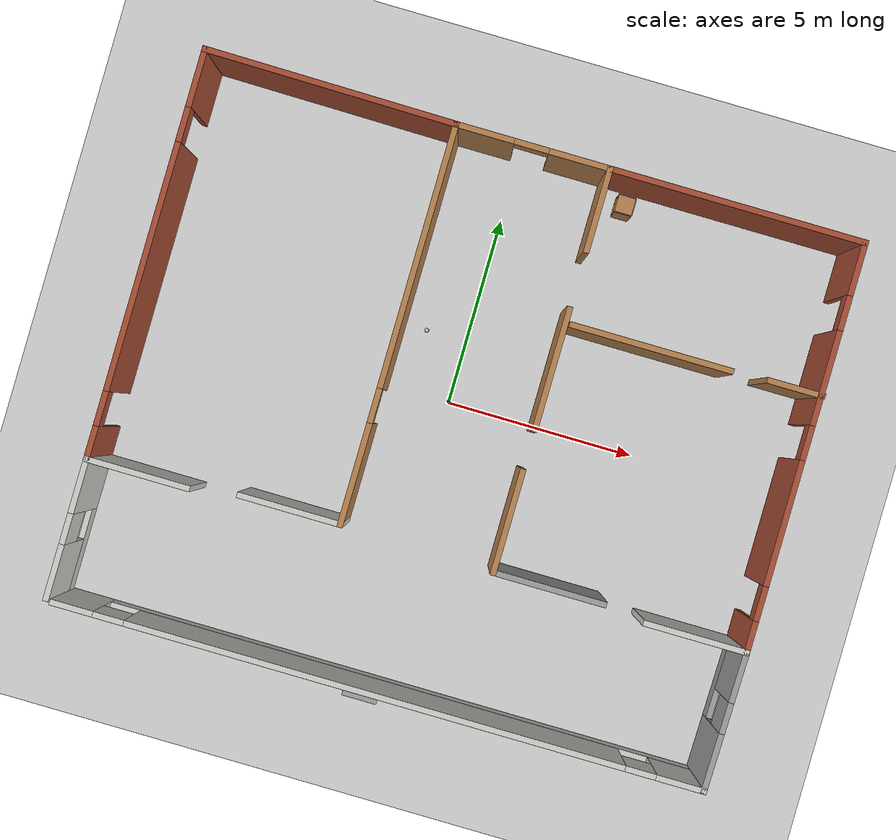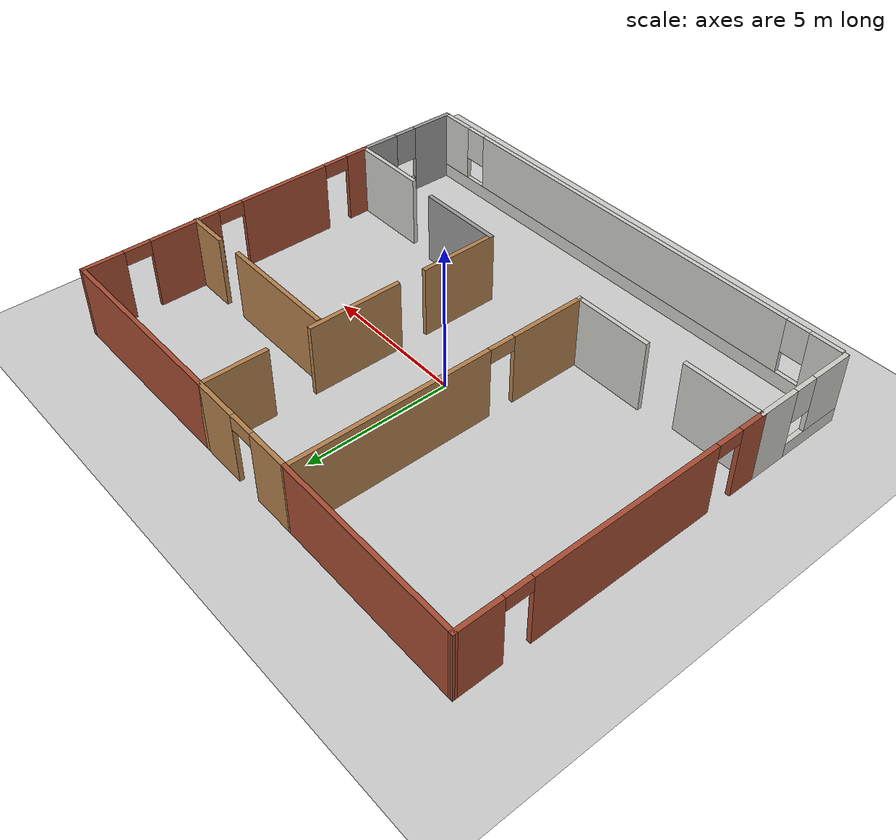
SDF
<sdf version="1.7">
 <world name="default">
  <light name="sun" type="directional">
   <pose>0 0 10 0 -0 0</pose>
   <diffuse>0.8 0.8 0.8 1</diffuse>
   <specular>0.2 0.2 0.2 1</specular>
   <attenuation>
    <range>1000</range>
    <constant>0.9</constant>
    <linear>0.01</linear>
    <quadratic>0.001</quadratic>
   </attenuation>
   <direction>-0.5 0.1 -0.9</direction>
   <spot><inner_angle>0</inner_angle><outer_angle>0</outer_angle><falloff>0</falloff></spot>
  </light>
  <model name="ground_plane">
   <static>1</static>
   <link name="link">
    <collision name="collision">
     <geometry><plane><normal>0 0 1</normal><size>100 100</size></plane></geometry>
     <surface><friction><ode><mu>100</mu><mu2>50</mu2></ode></friction></surface>
    </collision>
    <visual name="visual">
     <cast_shadows>0</cast_shadows>
     <geometry><plane><normal>0 0 1</normal><size>100 100</size></plane></geometry>
     <material>
      <script><uri>file://media/materials/scripts/gazebo.material</uri><name>Gazebo/Grey</name></script>
     </material>
    </visual>
   </link>
  </model>
  <gravity>0 0 -9.8</gravity>
  <magnetic_field>6e-06 2.3e-05 -4.2e-05</magnetic_field>
  <atmosphere type="adiabatic"/>
  <physics type="ode">
   <max_step_size>0.001</max_step_size>
   <real_time_factor>1</real_time_factor>
   <real_time_update_rate>1000</real_time_update_rate>
  </physics>
  <scene><ambient>0.4 0.4 0.4 1</ambient><background>0.7 0.7 0.7 1</background><shadows>1</shadows></scene>
  <audio><device>default</device></audio>
  <spherical_coordinates>
   <surface_model>EARTH_WGS84</surface_model>
   <latitude_deg>0</latitude_deg>
   <longitude_deg>0</longitude_deg>
   <elevation>0</elevation>
   <heading_deg>0</heading_deg>
  </spherical_coordinates>
  <model name="my_plan">
   <pose>0.324414 -0.387939 0 0 -0 0</pose>
   <link name="Door_9">
    <collision name="Door_9_Collision">
     <geometry><box><size>0.9 0.17 2</size></box></geometry>
     <pose>0 0 1 0 -0 0</pose>
    </collision>
    <visual name="Door_9_Visual">
     <pose>0 0 1 0 -0 0</pose>
     <geometry><box><size>0.9 0.17 2</size></box></geometry>
     <material>
      <script><uri>file://media/materials/scripts/gazebo.material</uri><name>Gazebo/Grey</name></script>
     </material>
    </visual>
    <pose>-0.408807 -7.33937 0 0 -0 0</pose>
   </link>
   <link name="Wall_0">
    <pose>-8.5662 1.83026 0 0 -0 -1.5708</pose>
    <visual name="Wall_0_Visual_0">
     <pose>-4.58913 0 1.25 0 -0 0</pose>
     <geometry><box><size>1.57174 0.15 2.5</size></box></geometry>
     <material>
      <script><uri>file://media/materials/scripts/gazebo.material</uri><name>Gazebo/Bricks</name></script>
      <ambient>1 1 1 1</ambient>
     </material>
     <meta><layer>0</layer></meta>
    </visual>
    <collision name="Wall_0_Collision_0">
     <geometry><box><size>1.57174 0.15 2.5</size></box></geometry>
     <pose>-4.58913 0 1.25 0 -0 0</pose>
    </collision>
    <visual name="Wall_0_Visual_1">
     <pose>0.319658 0 1.25 0 -0 0</pose>
     <geometry><box><size>6.44583 0.15 2.5</size></box></geometry>
     <material>
      <script><uri>file://media/materials/scripts/gazebo.material</uri><name>Gazebo/Bricks</name></script>
      <ambient>1 1 1 1</ambient>
     </material>
     <meta><layer>0</layer></meta>
    </visual>
    <collision name="Wall_0_Collision_1">
     <geometry><box><size>6.44583 0.15 2.5</size></box></geometry>
     <pose>0.319658 0 1.25 0 -0 0</pose>
    </collision>
    <visual name="Wall_0_Visual_2">
     <pose>4.90878 0 1.25 0 -0 0</pose>
     <geometry><box><size>0.932429 0.15 2.5</size></box></geometry>
     <material>
      <script><uri>file://media/materials/scripts/gazebo.material</uri><name>Gazebo/Bricks</name></script>
      <ambient>1 1 1 1</ambient>
     </material>
     <meta><layer>0</layer></meta>
    </visual>
    <collision name="Wall_0_Collision_2">
     <geometry><box><size>0.932429 0.15 2.5</size></box></geometry>
     <pose>4.90878 0 1.25 0 -0 0</pose>
    </collision>
    <visual name="Wall_0_Visual_3">
     <pose>-3.35325 0 2.25 0 -0 0</pose>
     <geometry><box><size>0.9 0.15 0.5</size></box></geometry>
     <material>
      <script><uri>file://media/materials/scripts/gazebo.material</uri><name>Gazebo/Bricks</name></script>
      <ambient>1 1 1 1</ambient>
     </material>
     <meta><layer>0</layer></meta>
    </visual>
    <collision name="Wall_0_Collision_3">
     <geometry><box><size>0.9 0.15 0.5</size></box></geometry>
     <pose>-3.35325 0 2.25 0 -0 0</pose>
    </collision>
    <visual name="Wall_0_Visual_4">
     <pose>3.99257 0 2.25 0 -0 0</pose>
     <geometry><box><size>0.9 0.15 0.5</size></box></geometry>
     <material>
      <script><uri>file://media/materials/scripts/gazebo.material</uri><name>Gazebo/Bricks</name></script>
      <ambient>1 1 1 1</ambient>
     </material>
     <meta><layer>0</layer></meta>
    </visual>
    <collision name="Wall_0_Collision_4">
     <geometry><box><size>0.9 0.15 0.5</size></box></geometry>
     <pose>3.99257 0 2.25 0 -0 0</pose>
    </collision>
   </link>
   <link name="Wall_1">
    <collision name="Wall_1_Collision">
     <geometry><box><size>2.75 0.15 2.5</size></box></geometry>
     <pose>0 0 1.25 0 -0 0</pose>
    </collision>
    <visual name="Wall_1_Visual">
     <pose>0 0 1.25 0 -0 0</pose>
     <geometry><box><size>2.75 0.15 2.5</size></box></geometry>
     <material>
      <script><uri>file://media/materials/scripts/gazebo.material</uri><name>Gazebo/CeilingTiled</name></script>
      <ambient>1 1 1 1</ambient>
     </material>
     <meta><layer>0</layer></meta>
    </visual>
    <pose>-7.2662 -3.46974 0 0 -0 0</pose>
   </link>
   <link name="Wall_10">
    <collision name="Wall_10_Collision">
     <geometry><box><size>2.75 0.15 2.5</size></box></geometry>
     <pose>0 0 1.25 0 -0 0</pose>
    </collision>
    <visual name="Wall_10_Visual">
     <pose>0 0 1.25 0 -0 0</pose>
     <geometry><box><size>2.75 0.15 2.5</size></box></geometry>
     <material>
      <script><uri>file://media/materials/scripts/gazebo.material</uri><name>Gazebo/Wood</name></script>
      <ambient>1 1 1 1</ambient>
     </material>
     <meta><layer>0</layer></meta>
    </visual>
    <pose>1.93486 -2.06311 0 0 -0 -1.5708</pose>
   </link>
   <link name="Wall_11">
    <collision name="Wall_11_Collision">
     <geometry><box><size>3 0.15 2.5</size></box></geometry>
     <pose>0 0 1.25 0 -0 0</pose>
    </collision>
    <visual name="Wall_11_Visual">
     <pose>0 0 1.25 0 -0 0</pose>
     <geometry><box><size>3 0.15 2.5</size></box></geometry>
     <material>
      <script><uri>file://media/materials/scripts/gazebo.material</uri><name>Gazebo/Grey</name></script>
      <ambient>1 1 1 1</ambient>
     </material>
     <meta><layer>0</layer></meta>
    </visual>
    <pose>3.35986 -3.36311 0 0 -0 0</pose>
   </link>
   <link name="Wall_13">
    <collision name="Wall_13_Collision">
     <geometry><box><size>4.25 0.15 2.5</size></box></geometry>
     <pose>0 0 1.25 0 -0 0</pose>
    </collision>
    <visual name="Wall_13_Visual">
     <pose>0 0 1.25 0 -0 0</pose>
     <geometry><box><size>4.25 0.15 2.5</size></box></geometry>
     <material>
      <script><uri>file://media/materials/scripts/gazebo.material</uri><name>Gazebo/Wood</name></script>
      <ambient>1 1 1 1</ambient>
     </material>
     <meta><layer>0</layer></meta>
    </visual>
    <pose>4.15976 3.0847 0 0 -0 0</pose>
   </link>
   <link name="Wall_15">
    <collision name="Wall_15_Collision">
     <geometry><box><size>3.25 0.15 2.5</size></box></geometry>
     <pose>0 0 1.25 0 -0 0</pose>
    </collision>
    <visual name="Wall_15_Visual">
     <pose>0 0 1.25 0 -0 0</pose>
     <geometry><box><size>3.25 0.15 2.5</size></box></geometry>
     <material>
      <script><uri>file://media/materials/scripts/gazebo.material</uri><name>Gazebo/Wood</name></script>
      <ambient>1 1 1 1</ambient>
     </material>
     <meta><layer>0</layer></meta>
    </visual>
    <pose>1.93486 1.88451 0 0 -0 -1.5708</pose>
   </link>
   <link name="Wall_17">
    <collision name="Wall_17_Collision">
     <geometry><box><size>1.5 0.15 2.5</size></box></geometry>
     <pose>0 0 1.25 0 -0 0</pose>
    </collision>
    <visual name="Wall_17_Visual">
     <pose>0 0 1.25 0 -0 0</pose>
     <geometry><box><size>1.5 0.15 2.5</size></box></geometry>
     <material>
      <script><uri>file://media/materials/scripts/gazebo.material</uri><name>Gazebo/Wood</name></script>
      <ambient>1 1 1 1</ambient>
     </material>
     <meta><layer>0</layer></meta>
    </visual>
    <pose>7.89186 3.11968 0 0 -0 0</pose>
   </link>
   <link name="Wall_19">
    <pose>0.040725 -7.12949 0 0 -0 0</pose>
    <visual name="Wall_19_Visual_0">
     <pose>-7.94541 0 1.25 0 -0 0</pose>
     <geometry><box><size>1.10919 0.15 2.5</size></box></geometry>
     <material>
      <script><uri>file://media/materials/scripts/gazebo.material</uri><name>Gazebo/CeilingTiled</name></script>
      <ambient>1 1 1 1</ambient>
     </material>
     <meta><layer>0</layer></meta>
    </visual>
    <collision name="Wall_19_Collision_0">
     <geometry><box><size>1.10919 0.15 2.5</size></box></geometry>
     <pose>-7.94541 0 1.25 0 -0 0</pose>
    </collision>
    <visual name="Wall_19_Visual_1">
     <pose>0.554593 0 0.25 0 -0 0</pose>
     <geometry><box><size>15.8908 0.15 0.5</size></box></geometry>
     <material>
      <script><uri>file://media/materials/scripts/gazebo.material</uri><name>Gazebo/CeilingTiled</name></script>
      <ambient>1 1 1 1</ambient>
     </material>
     <meta><layer>0</layer></meta>
    </visual>
    <collision name="Wall_19_Collision_1">
     <geometry><box><size>15.8908 0.15 0.5</size></box></geometry>
     <pose>0.554593 0 0.25 0 -0 0</pose>
    </collision>
    <visual name="Wall_19_Visual_2">
     <pose>-0.09973 0 1.5 0 -0 0</pose>
     <geometry><box><size>12.9822 0.15 2</size></box></geometry>
     <material>
      <script><uri>file://media/materials/scripts/gazebo.material</uri><name>Gazebo/CeilingTiled</name></script>
      <ambient>1 1 1 1</ambient>
     </material>
     <meta><layer>0</layer></meta>
    </visual>
    <collision name="Wall_19_Collision_2">
     <geometry><box><size>12.9822 0.15 2</size></box></geometry>
     <pose>-0.09973 0 1.5 0 -0 0</pose>
    </collision>
    <visual name="Wall_19_Visual_3">
     <pose>7.84568 0 1.5 0 -0 0</pose>
     <geometry><box><size>1.30865 0.15 2</size></box></geometry>
     <material>
      <script><uri>file://media/materials/scripts/gazebo.material</uri><name>Gazebo/CeilingTiled</name></script>
      <ambient>1 1 1 1</ambient>
     </material>
     <meta><layer>0</layer></meta>
    </visual>
    <collision name="Wall_19_Collision_3">
     <geometry><box><size>1.30865 0.15 2</size></box></geometry>
     <pose>7.84568 0 1.5 0 -0 0</pose>
    </collision>
    <visual name="Wall_19_Visual_4">
     <pose>-6.99081 0 1.9 0 -0 0</pose>
     <geometry><box><size>0.8 0.15 1.2</size></box></geometry>
     <material>
      <script><uri>file://media/materials/scripts/gazebo.material</uri><name>Gazebo/CeilingTiled</name></script>
      <ambient>1 1 1 1</ambient>
     </material>
     <meta><layer>0</layer></meta>
    </visual>
    <collision name="Wall_19_Collision_4">
     <geometry><box><size>0.8 0.15 1.2</size></box></geometry>
     <pose>-6.99081 0 1.9 0 -0 0</pose>
    </collision>
    <visual name="Wall_19_Visual_5">
     <pose>6.79135 0 1.9 0 -0 0</pose>
     <geometry><box><size>0.8 0.15 1.2</size></box></geometry>
     <material>
      <script><uri>file://media/materials/scripts/gazebo.material</uri><name>Gazebo/CeilingTiled</name></script>
      <ambient>1 1 1 1</ambient>
     </material>
     <meta><layer>0</layer></meta>
    </visual>
    <collision name="Wall_19_Collision_5">
     <geometry><box><size>0.8 0.15 1.2</size></box></geometry>
     <pose>6.79135 0 1.9 0 -0 0</pose>
    </collision>
   </link>
   <link name="Wall_20">
    <pose>8.50029 -5.32853 0 0 -0 1.5516</pose>
    <visual name="Wall_20_Visual_0">
     <pose>-1.0934 0 1.25 0 -0 0</pose>
     <geometry><box><size>1.56579 0.15 2.5</size></box></geometry>
     <material>
      <script><uri>file://media/materials/scripts/gazebo.material</uri><name>Gazebo/Grey</name></script>
      <ambient>1 1 1 1</ambient>
     </material>
     <meta><layer>0</layer></meta>
    </visual>
    <collision name="Wall_20_Collision_0">
     <geometry><box><size>1.56579 0.15 2.5</size></box></geometry>
     <pose>-1.0934 0 1.25 0 -0 0</pose>
    </collision>
    <visual name="Wall_20_Visual_1">
     <pose>0.782897 0 0.25 0 -0 0</pose>
     <geometry><box><size>2.1868 0.15 0.5</size></box></geometry>
     <material>
      <script><uri>file://media/materials/scripts/gazebo.material</uri><name>Gazebo/Grey</name></script>
      <ambient>1 1 1 1</ambient>
     </material>
     <meta><layer>0</layer></meta>
    </visual>
    <collision name="Wall_20_Collision_1">
     <geometry><box><size>2.1868 0.15 0.5</size></box></geometry>
     <pose>0.782897 0 0.25 0 -0 0</pose>
    </collision>
    <visual name="Wall_20_Visual_2">
     <pose>1.1829 0 1.5 0 -0 0</pose>
     <geometry><box><size>1.3868 0.15 2</size></box></geometry>
     <material>
      <script><uri>file://media/materials/scripts/gazebo.material</uri><name>Gazebo/Grey</name></script>
      <ambient>1 1 1 1</ambient>
     </material>
     <meta><layer>0</layer></meta>
    </visual>
    <collision name="Wall_20_Collision_2">
     <geometry><box><size>1.3868 0.15 2</size></box></geometry>
     <pose>1.1829 0 1.5 0 -0 0</pose>
    </collision>
    <visual name="Wall_20_Visual_3">
     <pose>0.089496 0 1.9 0 -0 0</pose>
     <geometry><box><size>0.8 0.15 1.2</size></box></geometry>
     <material>
      <script><uri>file://media/materials/scripts/gazebo.material</uri><name>Gazebo/Grey</name></script>
      <ambient>1 1 1 1</ambient>
     </material>
     <meta><layer>0</layer></meta>
    </visual>
    <collision name="Wall_20_Collision_3">
     <geometry><box><size>0.8 0.15 1.2</size></box></geometry>
     <pose>0.089496 0 1.9 0 -0 0</pose>
    </collision>
   </link>
   <link name="Wall_22">
    <pose>-8.5662 -5.26974 0 0 -0 -1.5708</pose>
    <visual name="Wall_22_Visual_0">
     <pose>-1.1346 0 1.25 0 -0 0</pose>
     <geometry><box><size>1.4808 0.15 2.5</size></box></geometry>
     <material>
      <script><uri>file://media/materials/scripts/gazebo.material</uri><name>Gazebo/CeilingTiled</name></script>
      <ambient>1 1 1 1</ambient>
     </material>
     <meta><layer>0</layer></meta>
    </visual>
    <collision name="Wall_22_Collision_0">
     <geometry><box><size>1.4808 0.15 2.5</size></box></geometry>
     <pose>-1.1346 0 1.25 0 -0 0</pose>
    </collision>
    <visual name="Wall_22_Visual_1">
     <pose>0.740401 0 0.25 0 -0 0</pose>
     <geometry><box><size>2.2692 0.15 0.5</size></box></geometry>
     <material>
      <script><uri>file://media/materials/scripts/gazebo.material</uri><name>Gazebo/CeilingTiled</name></script>
      <ambient>1 1 1 1</ambient>
     </material>
     <meta><layer>0</layer></meta>
    </visual>
    <collision name="Wall_22_Collision_1">
     <geometry><box><size>2.2692 0.15 0.5</size></box></geometry>
     <pose>0.740401 0 0.25 0 -0 0</pose>
    </collision>
    <visual name="Wall_22_Visual_2">
     <pose>1.1404 0 1.5 0 -0 0</pose>
     <geometry><box><size>1.4692 0.15 2</size></box></geometry>
     <material>
      <script><uri>file://media/materials/scripts/gazebo.material</uri><name>Gazebo/CeilingTiled</name></script>
      <ambient>1 1 1 1</ambient>
     </material>
     <meta><layer>0</layer></meta>
    </visual>
    <collision name="Wall_22_Collision_2">
     <geometry><box><size>1.4692 0.15 2</size></box></geometry>
     <pose>1.1404 0 1.5 0 -0 0</pose>
    </collision>
    <visual name="Wall_22_Visual_3">
     <pose>0.005802 0 1.9 0 -0 0</pose>
     <geometry><box><size>0.8 0.15 1.2</size></box></geometry>
     <material>
      <script><uri>file://media/materials/scripts/gazebo.material</uri><name>Gazebo/CeilingTiled</name></script>
      <ambient>1 1 1 1</ambient>
     </material>
     <meta><layer>0</layer></meta>
    </visual>
    <collision name="Wall_22_Collision_3">
     <geometry><box><size>0.8 0.15 1.2</size></box></geometry>
     <pose>0.005802 0 1.9 0 -0 0</pose>
    </collision>
   </link>
   <link name="Wall_25">
    <collision name="Wall_25_Collision">
     <geometry><box><size>6.66358 0.15 2.5</size></box></geometry>
     <pose>0 0 1.25 0 -0 0</pose>
    </collision>
    <visual name="Wall_25_Visual">
     <pose>0 0 1.25 0 -0 0</pose>
     <geometry><box><size>6.66358 0.15 2.5</size></box></geometry>
     <material>
      <script><uri>file://media/materials/scripts/gazebo.material</uri><name>Gazebo/Bricks</name></script>
      <ambient>1 1 1 1</ambient>
     </material>
     <meta><layer>0</layer></meta>
    </visual>
    <pose>-5.30954 7.10135 0 0 -0 -0.008877</pose>
   </link>
   <link name="Wall_29">
    <collision name="Wall_29_Collision">
     <geometry><box><size>2.25 0.15 2.5</size></box></geometry>
     <pose>0 0 1.25 0 -0 0</pose>
    </collision>
    <visual name="Wall_29_Visual">
     <pose>0 0 1.25 0 -0 0</pose>
     <geometry><box><size>2.25 0.15 2.5</size></box></geometry>
     <material>
      <script><uri>file://media/materials/scripts/gazebo.material</uri><name>Gazebo/Wood</name></script>
      <ambient>1 1 1 1</ambient>
     </material>
     <meta><layer>0</layer></meta>
    </visual>
    <pose>1.93486 6.02244 0 0 -0 -1.5708</pose>
   </link>
   <link name="Wall_3">
    <pose>-2.05287 1.89744 0 0 -0 -1.5708</pose>
    <visual name="Wall_3_Visual_0">
     <pose>-1.79957 0 1.25 0 -0 0</pose>
     <geometry><box><size>6.90087 0.15 2.5</size></box></geometry>
     <material>
      <script><uri>file://media/materials/scripts/gazebo.material</uri><name>Gazebo/Wood</name></script>
      <ambient>1 1 1 1</ambient>
     </material>
     <meta><layer>0</layer></meta>
    </visual>
    <collision name="Wall_3_Collision_0">
     <geometry><box><size>6.90087 0.15 2.5</size></box></geometry>
     <pose>-1.79957 0 1.25 0 -0 0</pose>
    </collision>
    <visual name="Wall_3_Visual_1">
     <pose>3.90043 0 1.25 0 -0 0</pose>
     <geometry><box><size>2.69913 0.15 2.5</size></box></geometry>
     <material>
      <script><uri>file://media/materials/scripts/gazebo.material</uri><name>Gazebo/Wood</name></script>
      <ambient>1 1 1 1</ambient>
     </material>
     <meta><layer>0</layer></meta>
    </visual>
    <collision name="Wall_3_Collision_1">
     <geometry><box><size>2.69913 0.15 2.5</size></box></geometry>
     <pose>3.90043 0 1.25 0 -0 0</pose>
    </collision>
    <visual name="Wall_3_Visual_2">
     <pose>2.10087 0 2.25 0 -0 0</pose>
     <geometry><box><size>0.9 0.15 0.5</size></box></geometry>
     <material>
      <script><uri>file://media/materials/scripts/gazebo.material</uri><name>Gazebo/Wood</name></script>
      <ambient>1 1 1 1</ambient>
     </material>
     <meta><layer>0</layer></meta>
    </visual>
    <collision name="Wall_3_Collision_2">
     <geometry><box><size>0.9 0.15 0.5</size></box></geometry>
     <pose>2.10087 0 2.25 0 -0 0</pose>
    </collision>
   </link>
   <link name="Wall_32">
    <pose>-0.059005 7.07244 0 0 -0 0</pose>
    <visual name="Wall_32_Visual_0">
     <pose>-1.27692 0 1.25 0 -0 0</pose>
     <geometry><box><size>1.58389 0.15 2.5</size></box></geometry>
     <material>
      <script><uri>file://media/materials/scripts/gazebo.material</uri><name>Gazebo/Wood</name></script>
      <ambient>1 1 1 1</ambient>
     </material>
     <meta><layer>0</layer></meta>
    </visual>
    <collision name="Wall_32_Collision_0">
     <geometry><box><size>1.58389 0.15 2.5</size></box></geometry>
     <pose>-1.27692 0 1.25 0 -0 0</pose>
    </collision>
    <visual name="Wall_32_Visual_1">
     <pose>1.24194 0 1.25 0 -0 0</pose>
     <geometry><box><size>1.65385 0.15 2.5</size></box></geometry>
     <material>
      <script><uri>file://media/materials/scripts/gazebo.material</uri><name>Gazebo/Wood</name></script>
      <ambient>1 1 1 1</ambient>
     </material>
     <meta><layer>0</layer></meta>
    </visual>
    <collision name="Wall_32_Collision_1">
     <geometry><box><size>1.65385 0.15 2.5</size></box></geometry>
     <pose>1.24194 0 1.25 0 -0 0</pose>
    </collision>
    <visual name="Wall_32_Visual_2">
     <pose>-0.03498 0 2.25 0 -0 0</pose>
     <geometry><box><size>0.9 0.15 0.5</size></box></geometry>
     <material>
      <script><uri>file://media/materials/scripts/gazebo.material</uri><name>Gazebo/Wood</name></script>
      <ambient>1 1 1 1</ambient>
     </material>
     <meta><layer>0</layer></meta>
    </visual>
    <collision name="Wall_32_Collision_2">
     <geometry><box><size>0.9 0.15 0.5</size></box></geometry>
     <pose>-0.03498 0 2.25 0 -0 0</pose>
    </collision>
   </link>
   <link name="Wall_4">
    <collision name="Wall_4_Collision">
     <geometry><box><size>2.75 0.15 2.5</size></box></geometry>
     <pose>0 0 1.25 0 -0 0</pose>
    </collision>
    <visual name="Wall_4_Visual">
     <pose>0 0 1.25 0 -0 0</pose>
     <geometry><box><size>2.75 0.15 2.5</size></box></geometry>
     <material>
      <script><uri>file://media/materials/scripts/gazebo.material</uri><name>Gazebo/CeilingTiled</name></script>
      <ambient>1 1 1 1</ambient>
     </material>
     <meta><layer>0</layer></meta>
    </visual>
    <pose>-3.35287 -3.27756 0 0 -0 3.14159</pose>
   </link>
   <link name="Wall_6">
    <collision name="Wall_6_Collision">
     <geometry><box><size>6.75 0.15 2.5</size></box></geometry>
     <pose>0 0 1.25 0 -0 0</pose>
    </collision>
    <visual name="Wall_6_Visual">
     <pose>0 0 1.25 0 -0 0</pose>
     <geometry><box><size>6.75 0.15 2.5</size></box></geometry>
     <material>
      <script><uri>file://media/materials/scripts/gazebo.material</uri><name>Gazebo/Bricks</name></script>
      <ambient>1 1 1 1</ambient>
     </material>
     <meta><layer>0</layer></meta>
    </visual>
    <pose>5.23486 7.07244 0 0 -0 0</pose>
   </link>
   <link name="Wall_7">
    <pose>8.53486 1.77244 0 0 -0 -1.5708</pose>
    <visual name="Wall_7_Visual_0">
     <pose>-4.65302 0 1.25 0 -0 0</pose>
     <geometry><box><size>1.44397 0.15 2.5</size></box></geometry>
     <material>
      <script><uri>file://media/materials/scripts/gazebo.material</uri><name>Gazebo/Bricks</name></script>
      <ambient>1 1 1 1</ambient>
     </material>
     <meta><layer>0</layer></meta>
    </visual>
    <collision name="Wall_7_Collision_0">
     <geometry><box><size>1.44397 0.15 2.5</size></box></geometry>
     <pose>-4.65302 0 1.25 0 -0 0</pose>
    </collision>
    <visual name="Wall_7_Visual_1">
     <pose>-1.80199 0 1.25 0 -0 0</pose>
     <geometry><box><size>2.45809 0.15 2.5</size></box></geometry>
     <material>
      <script><uri>file://media/materials/scripts/gazebo.material</uri><name>Gazebo/Bricks</name></script>
      <ambient>1 1 1 1</ambient>
     </material>
     <meta><layer>0</layer></meta>
    </visual>
    <collision name="Wall_7_Collision_1">
     <geometry><box><size>2.45809 0.15 2.5</size></box></geometry>
     <pose>-1.80199 0 1.25 0 -0 0</pose>
    </collision>
    <visual name="Wall_7_Visual_2">
     <pose>1.95838 0 1.25 0 -0 0</pose>
     <geometry><box><size>3.26263 0.15 2.5</size></box></geometry>
     <material>
      <script><uri>file://media/materials/scripts/gazebo.material</uri><name>Gazebo/Bricks</name></script>
      <ambient>1 1 1 1</ambient>
     </material>
     <meta><layer>0</layer></meta>
    </visual>
    <collision name="Wall_7_Collision_2">
     <geometry><box><size>3.26263 0.15 2.5</size></box></geometry>
     <pose>1.95838 0 1.25 0 -0 0</pose>
    </collision>
    <visual name="Wall_7_Visual_3">
     <pose>4.93235 0 1.25 0 -0 0</pose>
     <geometry><box><size>0.885307 0.15 2.5</size></box></geometry>
     <material>
      <script><uri>file://media/materials/scripts/gazebo.material</uri><name>Gazebo/Bricks</name></script>
      <ambient>1 1 1 1</ambient>
     </material>
     <meta><layer>0</layer></meta>
    </visual>
    <collision name="Wall_7_Collision_3">
     <geometry><box><size>0.885307 0.15 2.5</size></box></geometry>
     <pose>4.93235 0 1.25 0 -0 0</pose>
    </collision>
    <visual name="Wall_7_Visual_4">
     <pose>-3.48103 0 2.25 0 -0 0</pose>
     <geometry><box><size>0.9 0.15 0.5</size></box></geometry>
     <material>
      <script><uri>file://media/materials/scripts/gazebo.material</uri><name>Gazebo/Bricks</name></script>
      <ambient>1 1 1 1</ambient>
     </material>
     <meta><layer>0</layer></meta>
    </visual>
    <collision name="Wall_7_Collision_4">
     <geometry><box><size>0.9 0.15 0.5</size></box></geometry>
     <pose>-3.48103 0 2.25 0 -0 0</pose>
    </collision>
    <visual name="Wall_7_Visual_5">
     <pose>-0.122941 0 2.25 0 -0 0</pose>
     <geometry><box><size>0.9 0.15 0.5</size></box></geometry>
     <material>
      <script><uri>file://media/materials/scripts/gazebo.material</uri><name>Gazebo/Bricks</name></script>
      <ambient>1 1 1 1</ambient>
     </material>
     <meta><layer>0</layer></meta>
    </visual>
    <collision name="Wall_7_Collision_5">
     <geometry><box><size>0.9 0.15 0.5</size></box></geometry>
     <pose>-0.122941 0 2.25 0 -0 0</pose>
    </collision>
    <visual name="Wall_7_Visual_6">
     <pose>4.03969 0 2.25 0 -0 0</pose>
     <geometry><box><size>0.9 0.15 0.5</size></box></geometry>
     <material>
      <script><uri>file://media/materials/scripts/gazebo.material</uri><name>Gazebo/Bricks</name></script>
      <ambient>1 1 1 1</ambient>
     </material>
     <meta><layer>0</layer></meta>
    </visual>
    <collision name="Wall_7_Collision_6">
     <geometry><box><size>0.9 0.15 0.5</size></box></geometry>
     <pose>4.03969 0 2.25 0 -0 0</pose>
    </collision>
   </link>
   <link name="Wall_8">
    <collision name="Wall_8_Collision">
     <geometry><box><size>2.75 0.15 2.5</size></box></geometry>
     <pose>0 0 1.25 0 -0 0</pose>
    </collision>
    <visual name="Wall_8_Visual">
     <pose>0 0 1.25 0 -0 0</pose>
     <geometry><box><size>2.75 0.15 2.5</size></box></geometry>
     <material>
      <script><uri>file://media/materials/scripts/gazebo.material</uri><name>Gazebo/CeilingTiled</name></script>
      <ambient>1 1 1 1</ambient>
     </material>
     <meta><layer>0</layer></meta>
    </visual>
    <pose>7.23486 -3.52756 0 0 -0 3.14159</pose>
   </link>
   <static>1</static>
  </model>
  <model name="cabinet">
   <static>1</static>
   <link name="cabinet_bottom_plate">
    <inertial>
     <pose>0 0 -1 0 -0 0</pose>
     <inertia><ixx>2.05</ixx><ixy>0</ixy><ixz>0</ixz><iyy>2.05</iyy><iyz>0</iyz><izz>2.05</izz></inertia>
     <mass>25</mass>
    </inertial>
    <collision name="cabinet_bottom_plate_geom">
     <pose>0 0 0.01 0 -0 0</pose>
     <geometry><box><size>0.45 0.45 0.02</size></box></geometry>
    </collision>
    <visual name="cabinet_bottom_plate_geom_visual">
     <pose>0 0 0.01 0 -0 0</pose>
     <geometry><box><size>0.45 0.45 0.02</size></box></geometry>
     <material>
      <script><uri>file://media/materials/scripts/gazebo.material</uri><name>Gazebo/Wood</name></script>
     </material>
    </visual>
    <collision name="cabinet_bottom_plate_geom_cabinet_back_plate">
     <pose>0.235 0 0.51 0 -0 0</pose>
     <geometry><box><size>0.02 0.45 1.02</size></box></geometry>
    </collision>
    <visual name="cabinet_bottom_plate_geom_cabinet_back_plate_visual">
     <pose>0.235 0 0.51 0 -0 0</pose>
     <geometry><box><size>0.02 0.45 1.02</size></box></geometry>
     <material>
      <script><uri>file://media/materials/scripts/gazebo.material</uri><name>Gazebo/Wood</name></script>
     </material>
    </visual>
    <collision name="cabinet_bottom_plate_geom_cabinet_left_plate">
     <pose>0 0.235 0.51 0 -0 0</pose>
     <geometry><box><size>0.45 0.02 1.02</size></box></geometry>
    </collision>
    <visual name="cabinet_bottom_plate_geom_cabinet_left_plate_visual">
     <pose>0 0.235 0.51 0 -0 0</pose>
     <geometry><box><size>0.45 0.02 1.02</size></box></geometry>
     <material>
      <script><uri>file://media/materials/scripts/gazebo.material</uri><name>Gazebo/Wood</name></script>
     </material>
    </visual>
    <collision name="cabinet_bottom_plate_geom_cabinet_middle_plate">
     <pose>0 0 0.51 0 -0 0</pose>
     <geometry><box><size>0.45 0.45 0.02</size></box></geometry>
    </collision>
    <visual name="cabinet_bottom_plate_geom_cabinet_middle_plate_visual">
     <pose>0 0 0.51 0 -0 0</pose>
     <geometry><box><size>0.45 0.45 0.02</size></box></geometry>
     <material>
      <script><uri>file://media/materials/scripts/gazebo.material</uri><name>Gazebo/Wood</name></script>
     </material>
    </visual>
    <collision name="cabinet_bottom_plate_geom_cabinet_right_plate">
     <pose>0 -0.235 0.51 0 -0 0</pose>
     <geometry><box><size>0.45 0.02 1.02</size></box></geometry>
    </collision>
    <visual name="cabinet_bottom_plate_geom_cabinet_right_plate_visual">
     <pose>0 -0.235 0.51 0 -0 0</pose>
     <geometry><box><size>0.45 0.02 1.02</size></box></geometry>
     <material>
      <script><uri>file://media/materials/scripts/gazebo.material</uri><name>Gazebo/Wood</name></script>
     </material>
    </visual>
    <collision name="cabinet_bottom_plate_geom_cabinet_top_plate">
     <pose>0 0 1.01 0 -0 0</pose>
     <geometry><box><size>0.45 0.45 0.02</size></box></geometry>
    </collision>
    <visual name="cabinet_bottom_plate_geom_cabinet_top_plate_visual">
     <pose>0 0 1.01 0 -0 0</pose>
     <geometry><box><size>0.45 0.45 0.02</size></box></geometry>
     <material>
      <script><uri>file://media/materials/scripts/gazebo.material</uri><name>Gazebo/Wood</name></script>
     </material>
    </visual>
   </link>
   <pose>2.96482 6.1695 0 0 -0 0</pose>
  </model>
  <model name="beer">
   <link name="link">
    <pose>0 0 0.115 0 -0 0</pose>
    <inertial>
     <mass>0.39</mass>
     <inertia><ixx>0.00058</ixx><ixy>0</ixy><ixz>0</ixz><iyy>0.00058</iyy><iyz>0</iyz><izz>0.00019</izz></inertia>
    </inertial>
    <collision name="collision">
     <geometry><cylinder><radius>0.055</radius><length>0.23</length></cylinder></geometry>
    </collision>
    <visual name="visual">
     <geometry><cylinder><radius>0.055</radius><length>0.23</length></cylinder></geometry>
     <material>
      <script>
       <uri>model://beer/materials/scripts</uri>
       <uri>model://beer/materials/textures</uri>
       <name>Beer/Diffuse</name>
      </script>
     </material>
    </visual>
   </link>
   <pose>-1.08807 1.68766 -2e-06 1e-06 -0 -3e-06</pose>
  </model>
 </world>
</sdf>
